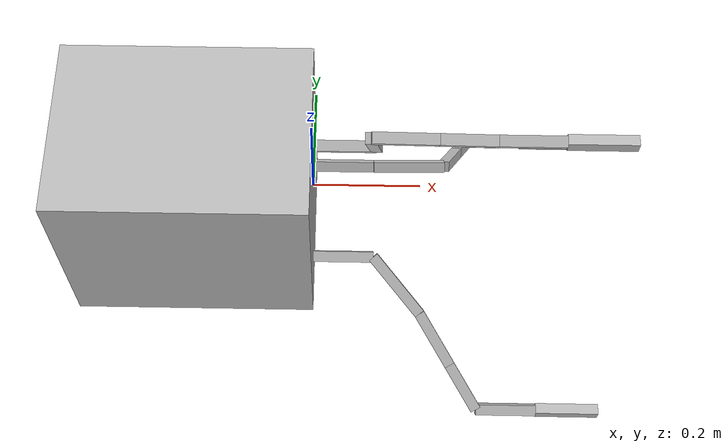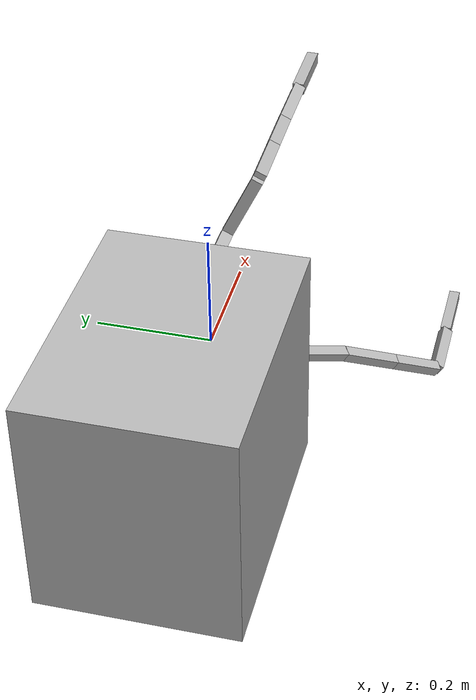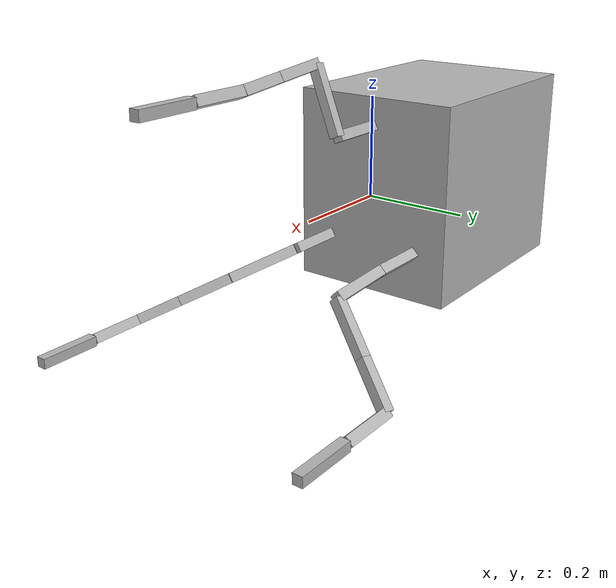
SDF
<?xml version="1.0" ?>
<sdf version="1.5">
<model name="four_bar_sdf">
<pose>0 0 0 0 0 0</pose>
<self_collide>true</self_collide>
<link name="linkROV">
<pose>-0.2286 0 0 0 0 0</pose>
<inertial>
<mass>1.0</mass>
<inertia>
<ixx>0.0227</ixx>
<iyy>0.0306</iyy>
<izz>0.0269</izz>
<ixy>0.0</ixy>
<ixz>0.0</ixz>
<iyz>0.0</iyz>
</inertia>
</inertial>
<collision name="linkROV_collision">
<geometry>
<box>
<size>0.4572 0.33805 0.39785</size>
</box>
</geometry>
</collision>
<visual name="linkROV_visual">
<geometry>
<box>
<size>0.4572 0.33805 0.39785</size>
</box>
</geometry>
<material>
<color rgba="0.3 0.3 0.3 1.0"/>
</material>
</visual>
</link>
<link name="arm1link1">
<pose>0.05750000 0.10000000 -0.10000000 -0.78489806 -0.00000000 0.00000000 </pose>
<inertial>
<mass>0.575</mass>
<inertia>
<ixx>3.8333e-05</ixx>
<iyy>6.5286e-04</iyy>
<izz>6.5286e-04</izz>
<ixy>0.0</ixy>
<ixz>0.0</ixz>
<iyz>0.0</iyz>
</inertia>
</inertial>
<collision name="arm1link1_collision">
<geometry>
<box>
<size>0.115 0.02 0.02</size>
</box>
</geometry>
</collision>
<visual name="arm1link1_visual">
<geometry>
<box>
<size>0.115 0.02 0.02</size>
</box>
</geometry>
<material>
<color rgba="0.3 0.3 0.3 1.0"/>
</material>
</visual>
</link>
<link name="arm1link2">
<pose>0.18493043 0.10220732 -0.10220511 -0.78440089 0.03150685 0.03155406 </pose>
<inertial>
<mass>0.700</mass>
<inertia>
<ixx>4.6667e-05</ixx>
<iyy>1.1667e-03</iyy>
<izz>1.1667e-03</izz>
<ixy>0.0</ixy>
<ixz>0.0</ixz>
<iyz>0.0</iyz>
</inertia>
</inertial>
<collision name="arm1link2_collision">
<geometry>
<box>
<size>0.140 0.02 0.02</size>
</box>
</geometry>
</collision>
<visual name="arm1link2_visual">
<geometry>
<box>
<size>0.140 0.02 0.02</size>
</box>
</geometry>
<material>
<color rgba="0.3 0.3 0.3 1.0"/>
</material>
</visual>
</link>
<link name="arm1link3">
<pose>0.27131159 0.14339323 -0.14334985 -0.27839144 0.74396510 1.17143103 </pose>
<inertial>
<mass>0.575</mass>
<inertia>
<ixx>3.8333e-05</ixx>
<iyy>6.5286e-04</iyy>
<izz>6.5286e-04</izz>
<ixy>0.0</ixy>
<ixz>0.0</ixz>
<iyz>0.0</iyz>
</inertia>
</inertial>
<collision name="arm1link3_collision">
<geometry>
<box>
<size>0.115 0.02 0.02</size>
</box>
</geometry>
</collision>
<visual name="arm1link3_visual">
<geometry>
<box>
<size>0.115 0.02 0.02</size>
</box>
</geometry>
<material>
<color rgba="0.3 0.3 0.3 1.0"/>
</material>
</visual>
</link>
<link name="arm1link4">
<pose>0.30206729 0.21626623 -0.21615000 -0.27878637 0.74396510 1.17143103 </pose>
<inertial>
<mass>0.500</mass>
<inertia>
<ixx>3.3333e-05</ixx>
<iyy>4.3333e-04</iyy>
<izz>4.3333e-04</izz>
<ixy>0.0</ixy>
<ixz>0.0</ixz>
<iyz>0.0</iyz>
</inertia>
</inertial>
<collision name="arm1link4_collision">
<geometry>
<box>
<size>0.100 0.02 0.02</size>
</box>
</geometry>
</collision>
<visual name="arm1link4_visual">
<geometry>
<box>
<size>0.100 0.02 0.02</size>
</box>
</geometry>
<material>
<color rgba="0.3 0.3 0.3 1.0"/>
</material>
</visual>
</link>
<link name="arm1link5">
<pose>0.37387226 0.25014926 -0.24996839 -0.78501085 -0.00073295 -0.00019814 </pose>
<inertial>
<mass>0.575</mass>
<inertia>
<ixx>3.8333e-05</ixx>
<iyy>6.5286e-04</iyy>
<izz>6.5286e-04</izz>
<ixy>0.0</ixy>
<ixz>0.0</ixz>
<iyz>0.0</iyz>
</inertia>
</inertial>
<collision name="arm1link5_collision">
<geometry>
<box>
<size>0.115 0.02 0.02</size>
</box>
</geometry>
</collision>
<visual name="arm1link5_visual">
<geometry>
<box>
<size>0.115 0.02 0.02</size>
</box>
</geometry>
<material>
<color rgba="0.3 0.3 0.3 1.0"/>
</material>
</visual>
</link>
<link name="arm1link6">
<pose>0.49137222 0.25012597 -0.24988227 0.00024133 -0.00073295 -0.00019814 </pose>
<inertial>
<mass>0.600</mass>
<inertia>
<ixx>4.0000e-05</ixx>
<iyy>7.4000e-04</iyy>
<izz>7.4000e-04</izz>
<ixy>0.0</ixy>
<ixz>0.0</ixz>
<iyz>0.0</iyz>
</inertia>
</inertial>
<collision name="arm1link6_collision">
<geometry>
<box>
<size>0.120 0.02 0.02</size>
</box>
</geometry>
</collision>
<visual name="arm1link6_visual">
<geometry>
<box>
<size>0.120 0.02 0.02</size>
</box>
</geometry>
<material>
<color rgba="0.3 0.3 0.3 1.0"/>
</material>
</visual>
</link>
<link name="arm2link1">
<pose>0.05750000 -0.10000000 -0.10000000 -2.60120000 0.00000000 0.00000000 </pose>
<inertial>
<mass>0.575</mass>
<inertia>
<ixx>3.8333e-05</ixx>
<iyy>6.5286e-04</iyy>
<izz>6.5286e-04</izz>
<ixy>0.0</ixy>
<ixz>0.0</ixz>
<iyz>0.0</iyz>
</inertia>
</inertial>
<collision name="arm2link1_collision">
<geometry>
<box>
<size>0.115 0.02 0.02</size>
</box>
</geometry>
</collision>
<visual name="arm2link1_visual">
<geometry>
<box>
<size>0.115 0.02 0.02</size>
</box>
</geometry>
<material>
<color rgba="0.3 0.3 0.3 1.0"/>
</material>
</visual>
</link>
<link name="arm2link2">
<pose>0.15994000 -0.14602000 -0.12761000 -2.77390000 0.40547000 -0.79719000 </pose>
<inertial>
<mass>0.700</mass>
<inertia>
<ixx>4.6667e-05</ixx>
<iyy>1.1667e-03</iyy>
<izz>1.1667e-03</izz>
<ixy>0.0</ixy>
<ixz>0.0</ixz>
<iyz>0.0</iyz>
</inertia>
</inertial>
<collision name="arm2link2_collision">
<geometry>
<box>
<size>0.140 0.02 0.02</size>
</box>
</geometry>
</collision>
<visual name="arm2link2_visual">
<geometry>
<box>
<size>0.140 0.02 0.02</size>
</box>
</geometry>
<material>
<color rgba="0.3 0.3 0.3 1.0"/>
</material>
</visual>
</link>
<link name="arm2link3">
<pose>0.23467000 -0.23421000 -0.18053000 -2.84030000 0.45573000 -0.95596000 </pose>
<inertial>
<mass>0.575</mass>
<inertia>
<ixx>3.8333e-05</ixx>
<iyy>6.5286e-04</iyy>
<izz>6.5286e-04</izz>
<ixy>0.0</ixy>
<ixz>0.0</ixz>
<iyz>0.0</iyz>
</inertia>
</inertial>
<collision name="arm2link3_collision">
<geometry>
<box>
<size>0.115 0.02 0.02</size>
</box>
</geometry>
</collision>
<visual name="arm2link3_visual">
<geometry>
<box>
<size>0.115 0.02 0.02</size>
</box>
</geometry>
<material>
<color rgba="0.3 0.3 0.3 1.0"/>
</material>
</visual>
</link>
<link name="arm2link4">
<pose>0.29035000 -0.31306000 -0.22784000 0.30135000 0.45573000 -0.95596000 </pose>
<inertial>
<mass>0.500</mass>
<inertia>
<ixx>3.3333e-05</ixx>
<iyy>4.3333e-04</iyy>
<izz>4.3333e-04</izz>
<ixy>0.0</ixy>
<ixz>0.0</ixz>
<iyz>0.0</iyz>
</inertia>
</inertial>
<collision name="arm2link4_collision">
<geometry>
<box>
<size>0.100 0.02 0.02</size>
</box>
</geometry>
</collision>
<visual name="arm2link4_visual">
<geometry>
<box>
<size>0.100 0.02 0.02</size>
</box>
</geometry>
<material>
<color rgba="0.3 0.3 0.3 1.0"/>
</material>
</visual>
</link>
<link name="arm2link5">
<pose>0.37375000 -0.34976000 -0.24986000 0.54046000 0.00022132 -0.00041151 </pose>
<inertial>
<mass>0.575</mass>
<inertia>
<ixx>3.8333e-05</ixx>
<iyy>6.5286e-04</iyy>
<izz>6.5286e-04</izz>
<ixy>0.0</ixy>
<ixz>0.0</ixz>
<iyz>0.0</iyz>
</inertia>
</inertial>
<collision name="arm2link5_collision">
<geometry>
<box>
<size>0.115 0.02 0.02</size>
</box>
</geometry>
</collision>
<visual name="arm2link5_visual">
<geometry>
<box>
<size>0.115 0.02 0.02</size>
</box>
</geometry>
<material>
<color rgba="0.3 0.3 0.3 1.0"/>
</material>
</visual>
</link>
<link name="arm2link6">
<pose>0.49125000 -0.34981000 -0.24989000 -0.00020188 0.00022132 -0.00041151 </pose>
<inertial>
<mass>0.600</mass>
<inertia>
<ixx>4.0000e-05</ixx>
<iyy>7.4000e-04</iyy>
<izz>7.4000e-04</izz>
<ixy>0.0</ixy>
<ixz>0.0</ixz>
<iyz>0.0</iyz>
</inertia>
</inertial>
<collision name="arm2link6_collision">
<geometry>
<box>
<size>0.120 0.02 0.02</size>
</box>
</geometry>
</collision>
<visual name="arm2link6_visual">
<geometry>
<box>
<size>0.120 0.02 0.02</size>
</box>
</geometry>
<material>
<color rgba="0.3 0.3 0.3 1.0"/>
</material>
</visual>
</link>
<link name="arm3link1">
<pose>0.05750000 0.00000000 0.14142000 -1.13370000 0.00000000 0.00000000 </pose>
<inertial>
<mass>0.575</mass>
<inertia>
<ixx>3.8333e-05</ixx>
<iyy>6.5286e-04</iyy>
<izz>6.5286e-04</izz>
<ixy>0.0</ixy>
<ixz>0.0</ixz>
<iyz>0.0</iyz>
</inertia>
</inertial>
<collision name="arm3link1_collision">
<geometry>
<box>
<size>0.115 0.02 0.02</size>
</box>
</geometry>
</collision>
<visual name="arm3link1_visual">
<geometry>
<box>
<size>0.115 0.02 0.02</size>
</box>
</geometry>
<material>
<color rgba="0.3 0.3 0.3 1.0"/>
</material>
</visual>
</link>
<link name="arm3link2">
<pose>0.10873000 -0.02951200 0.20459000 0.18945000 -1.12520000 -1.78020000 </pose>
<inertial>
<mass>0.700</mass>
<inertia>
<ixx>4.6667e-05</ixx>
<iyy>1.1667e-03</iyy>
<izz>1.1667e-03</izz>
<ixy>0.0</ixy>
<ixz>0.0</ixz>
<iyz>0.0</iyz>
</inertia>
</inertial>
<collision name="arm3link2_collision">
<geometry>
<box>
<size>0.140 0.02 0.02</size>
</box>
</geometry>
</collision>
<visual name="arm3link2_visual">
<geometry>
<box>
<size>0.140 0.02 0.02</size>
</box>
</geometry>
<material>
<color rgba="0.3 0.3 0.3 1.0"/>
</material>
</visual>
</link>
<link name="arm3link3">
<pose>0.15970000 -0.05672700 0.26283000 -1.13200000 0.08562600 0.04011600 </pose>
<inertial>
<mass>0.575</mass>
<inertia>
<ixx>3.8333e-05</ixx>
<iyy>6.5286e-04</iyy>
<izz>6.5286e-04</izz>
<ixy>0.0</ixy>
<ixz>0.0</ixz>
<iyz>0.0</iyz>
</inertia>
</inertial>
<collision name="arm3link3_collision">
<geometry>
<box>
<size>0.115 0.02 0.02</size>
</box>
</geometry>
</collision>
<visual name="arm3link3_visual">
<geometry>
<box>
<size>0.115 0.02 0.02</size>
</box>
</geometry>
<material>
<color rgba="0.3 0.3 0.3 1.0"/>
</material>
</visual>
</link>
<link name="arm3link4">
<pose>0.26672000 -0.05243200 0.25364000 -1.13180000 0.08562600 0.04011600 </pose>
<inertial>
<mass>0.500</mass>
<inertia>
<ixx>3.3333e-05</ixx>
<iyy>4.3333e-04</iyy>
<izz>4.3333e-04</izz>
<ixy>0.0</ixy>
<ixz>0.0</ixz>
<iyz>0.0</iyz>
</inertia>
</inertial>
<collision name="arm3link4_collision">
<geometry>
<box>
<size>0.100 0.02 0.02</size>
</box>
</geometry>
</collision>
<visual name="arm3link4_visual">
<geometry>
<box>
<size>0.100 0.02 0.02</size>
</box>
</geometry>
<material>
<color rgba="0.3 0.3 0.3 1.0"/>
</material>
</visual>
</link>
<link name="arm3link5">
<pose>0.37400000 -0.05042000 0.24933000 -1.13350000 0.00056834 0.00024374 </pose>
<inertial>
<mass>0.575</mass>
<inertia>
<ixx>3.8333e-05</ixx>
<iyy>6.5286e-04</iyy>
<izz>6.5286e-04</izz>
<ixy>0.0</ixy>
<ixz>0.0</ixz>
<iyz>0.0</iyz>
</inertia>
</inertial>
<collision name="arm3link5_collision">
<geometry>
<box>
<size>0.115 0.02 0.02</size>
</box>
</geometry>
</collision>
<visual name="arm3link5_visual">
<geometry>
<box>
<size>0.115 0.02 0.02</size>
</box>
</geometry>
<material>
<color rgba="0.3 0.3 0.3 1.0"/>
</material>
</visual>
</link>
<link name="arm3link6">
<pose>0.49150000 -0.05039100 0.24926000 -0.00002580 0.00056834 0.00024374 </pose>
<inertial>
<mass>0.600</mass>
<inertia>
<ixx>4.0000e-05</ixx>
<iyy>7.4000e-04</iyy>
<izz>7.4000e-04</izz>
<ixy>0.0</ixy>
<ixz>0.0</ixz>
<iyz>0.0</iyz>
</inertia>
</inertial>
<collision name="arm3link6_collision">
<geometry>
<box>
<size>0.120 0.02 0.02</size>
</box>
</geometry>
</collision>
<visual name="arm3link6_visual">
<geometry>
<box>
<size>0.120 0.02 0.02</size>
</box>
</geometry>
<material>
<color rgba="0.3 0.3 0.3 1.0"/>
</material>
</visual>
</link>
<joint name="arm1_jointgrip" type="fixed">
<pose>0 0 0 0 0 0</pose>
<parent>world</parent>
<child>arm1link6</child>
</joint>
<joint name="arm1_joint1" type="revolute">
<pose>0 0 0 0 0 0</pose>
<parent>linkROV</parent>
<child>arm1link1</child>
<axis>
<xyz>1 0 0</xyz>
<dynamics>
<damping>0.05</damping>
<friction>0</friction>
<spring_reference>0</spring_reference>
<spring_stiffness>10.0</spring_stiffness>
</dynamics>
</axis>
</joint>
<joint name="arm1_joint2" type="revolute">
<pose>-0.07 0 0 0 0 0</pose>
<parent>arm1link1</parent>
<child>arm1link2</child>
<axis>
<xyz>0 0 1</xyz>
<dynamics>
<damping>0.05</damping>
<friction>0</friction>
<spring_reference>0</spring_reference>
<spring_stiffness>10.0</spring_stiffness>
</dynamics>
</axis>
</joint>
<joint name="arm1_joint3" type="revolute">
<pose>-0.0575 0 0 0 0 0</pose>
<parent>arm1link2</parent>
<child>arm1link3</child>
<axis>
<xyz>0 0 1</xyz>
<dynamics>
<damping>0.05</damping>
<friction>0</friction>
<spring_reference>0</spring_reference>
<spring_stiffness>10.0</spring_stiffness>
</dynamics>
</axis>
</joint>
<joint name="arm1_joint4" type="revolute">
<pose>-0.05 0 0 0 0 0</pose>
<parent>arm1link3</parent>
<child>arm1link4</child>
<axis>
<xyz>1 0 0</xyz>
<dynamics>
<damping>0.05</damping>
<friction>0</friction>
<spring_reference>0</spring_reference>
<spring_stiffness>10.0</spring_stiffness>
</dynamics>
</axis>
</joint>
<joint name="arm1_joint5" type="revolute">
<pose>-0.0575 0 0 0 0 0</pose>
<parent>arm1link4</parent>
<child>arm1link5</child>
<axis>
<xyz>0 0 1</xyz>
<dynamics>
<damping>0.05</damping>
<friction>0</friction>
<spring_reference>0</spring_reference>
<spring_stiffness>10.0</spring_stiffness>
</dynamics>
</axis>
</joint>
<joint name="arm1_joint6" type="revolute">
<pose>-0.06 0 0 0 0 0</pose>
<parent>arm1link5</parent>
<child>arm1link6</child>
<axis>
<xyz>1 0 0</xyz>
<dynamics>
<damping>0.05</damping>
<friction>0</friction>
<spring_reference>0</spring_reference>
<spring_stiffness>10.0</spring_stiffness>
</dynamics>
</axis>
</joint>
<joint name="arm2_jointgrip" type="fixed">
<pose>0 0 0 0 0 0</pose>
<parent>world</parent>
<child>arm2link6</child>
</joint>
<joint name="arm2_joint1" type="revolute">
<pose>0 0 0 0 0 0</pose>
<parent>linkROV</parent>
<child>arm2link1</child>
<axis>
<xyz>1 0 0</xyz>
<dynamics>
<damping>0.05</damping>
<friction>0</friction>
<spring_reference>0</spring_reference>
<spring_stiffness>10.0</spring_stiffness>
</dynamics>
</axis>
</joint>
<joint name="arm2_joint2" type="revolute">
<pose>-0.07 0 0 0 0 0</pose>
<parent>arm2link1</parent>
<child>arm2link2</child>
<axis>
<xyz>0 0 1</xyz>
<dynamics>
<damping>0.05</damping>
<friction>0</friction>
<spring_reference>0</spring_reference>
<spring_stiffness>10.0</spring_stiffness>
</dynamics>
</axis>
</joint>
<joint name="arm2_joint3" type="revolute">
<pose>-0.0575 0 0 0 0 0</pose>
<parent>arm2link2</parent>
<child>arm2link3</child>
<axis>
<xyz>0 0 1</xyz>
<dynamics>
<damping>0.05</damping>
<friction>0</friction>
<spring_reference>0</spring_reference>
<spring_stiffness>10.0</spring_stiffness>
</dynamics>
</axis>
</joint>
<joint name="arm2_joint4" type="revolute">
<pose>-0.05 0 0 0 0 0</pose>
<parent>arm2link3</parent>
<child>arm2link4</child>
<axis>
<xyz>1 0 0</xyz>
<dynamics>
<damping>0.05</damping>
<friction>0</friction>
<spring_reference>0</spring_reference>
<spring_stiffness>10.0</spring_stiffness>
</dynamics>
</axis>
</joint>
<joint name="arm2_joint5" type="revolute">
<pose>-0.0575 0 0 0 0 0</pose>
<parent>arm2link4</parent>
<child>arm2link5</child>
<axis>
<xyz>0 0 1</xyz>
<dynamics>
<damping>0.05</damping>
<friction>0</friction>
<spring_reference>0</spring_reference>
<spring_stiffness>10.0</spring_stiffness>
</dynamics>
</axis>
</joint>
<joint name="arm2_joint6" type="revolute">
<pose>-0.06 0 0 0 0 0</pose>
<parent>arm2link5</parent>
<child>arm2link6</child>
<axis>
<xyz>1 0 0</xyz>
<dynamics>
<damping>0.05</damping>
<friction>0</friction>
<spring_reference>0</spring_reference>
<spring_stiffness>10.0</spring_stiffness>
</dynamics>
</axis>
</joint>
<joint name="arm3_jointgrip" type="fixed">
<pose>0 0 0 0 0 0</pose>
<parent>world</parent>
<child>arm3link6</child>
</joint>
<joint name="arm3_joint1" type="revolute">
<pose>0 0 0 0 0 0</pose>
<parent>linkROV</parent>
<child>arm3link1</child>
<axis>
<xyz>1 0 0</xyz>
<dynamics>
<damping>0.05</damping>
<friction>0</friction>
<spring_reference>0</spring_reference>
<spring_stiffness>10.0</spring_stiffness>
</dynamics>
</axis>
</joint>
<joint name="arm3_joint2" type="revolute">
<pose>-0.07 0 0 0 0 0</pose>
<parent>arm3link1</parent>
<child>arm3link2</child>
<axis>
<xyz>0 0 1</xyz>
<dynamics>
<damping>0.05</damping>
<friction>0</friction>
<spring_reference>0</spring_reference>
<spring_stiffness>10.0</spring_stiffness>
</dynamics>
</axis>
</joint>
<joint name="arm3_joint3" type="revolute">
<pose>-0.0575 0 0 0 0 0</pose>
<parent>arm3link2</parent>
<child>arm3link3</child>
<axis>
<xyz>0 0 1</xyz>
<dynamics>
<damping>0.05</damping>
<friction>0</friction>
<spring_reference>0</spring_reference>
<spring_stiffness>10.0</spring_stiffness>
</dynamics>
</axis>
</joint>
<joint name="arm3_joint4" type="revolute">
<pose>-0.05 0 0 0 0 0</pose>
<parent>arm3link3</parent>
<child>arm3link4</child>
<axis>
<xyz>1 0 0</xyz>
<dynamics>
<damping>0.05</damping>
<friction>0</friction>
<spring_reference>0</spring_reference>
<spring_stiffness>10.0</spring_stiffness>
</dynamics>
</axis>
</joint>
<joint name="arm3_joint5" type="revolute">
<pose>-0.0575 0 0 0 0 0</pose>
<parent>arm3link4</parent>
<child>arm3link5</child>
<axis>
<xyz>0 0 1</xyz>
<dynamics>
<damping>0.05</damping>
<friction>0</friction>
<spring_reference>0</spring_reference>
<spring_stiffness>10.0</spring_stiffness>
</dynamics>
</axis>
</joint>
<joint name="arm3_joint6" type="revolute">
<pose>-0.06 0 0 0 0 0</pose>
<parent>arm3link5</parent>
<child>arm3link6</child>
<axis>
<xyz>1 0 0</xyz>
<dynamics>
<damping>0.05</damping>
<friction>0</friction>
<spring_reference>0</spring_reference>
<spring_stiffness>10.0</spring_stiffness>
</dynamics>
</axis>
</joint>
</model>
</sdf>
